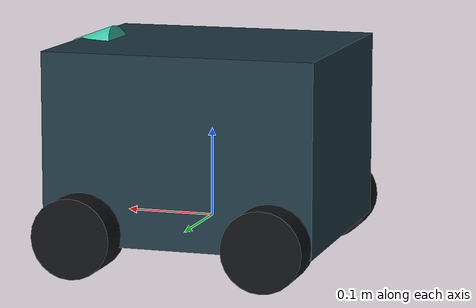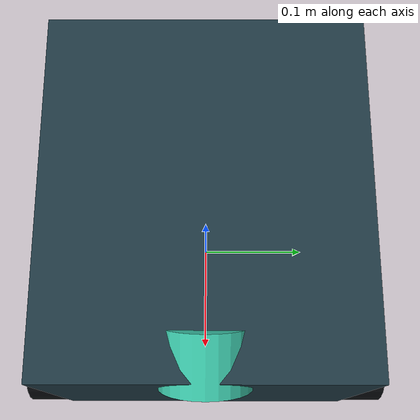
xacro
<?xml version="1.0"?>
<robot xmlns:xacro="http://www.ros.org/wiki/xacro" name="mrbobus">
  <xacro:include filename="$(find robot_base)/description/robot.urdf"/>
  <!-- Test standard controllers with the existing geometry, without any CAN transport. -->
  <ros2_control name="MrbobusMock" type="system">
    <hardware>
      <plugin>mock_components/GenericSystem</plugin>
      <param name="calculate_dynamics">true</param>
    </hardware>
    <xacro:macro name="wheel" params="name">
      <joint name="${name}_wheel_joint">
        <command_interface name="velocity"/>
        <state_interface name="position"><param name="initial_value">0.0</param></state_interface>
        <state_interface name="velocity"><param name="initial_value">0.0</param></state_interface>
      </joint>
    </xacro:macro>
    <xacro:wheel name="rear_right"/><xacro:wheel name="rear_left"/>
    <xacro:wheel name="front_left"/><xacro:wheel name="front_right"/>
  </ros2_control>
</robot>

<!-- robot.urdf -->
<robot name="box_tank">
  <material name="body"><color rgba="0.12 0.22 0.26 1"/></material>
  <material name="rubber"><color rgba="0.06 0.07 0.08 1"/></material>
  <material name="sensor"><color rgba="0.24 0.8 0.68 1"/></material>
  <link name="base_link">
    <!-- Bounding envelope of current Fusion base component (not a detailed collision mesh). -->
    <visual><origin xyz="0 0 0.092545"/><geometry><box size="0.30702 0.27004 0.21303"/></geometry><material name="body"/></visual>
  </link>
  <link name="base_footprint"/>
  <joint name="footprint_joint" type="fixed"><parent link="base_link"/><child link="base_footprint"/><origin xyz="0 0 -0.045"/></joint>
  <link name="rear_right_wheel"><visual><origin rpy="1.57079632679 0 0"/><geometry><cylinder radius="0.045" length="0.055"/></geometry><material name="rubber"/></visual></link>
  <link name="rear_left_wheel"><visual><origin rpy="1.57079632679 0 0"/><geometry><cylinder radius="0.045" length="0.055"/></geometry><material name="rubber"/></visual></link>
  <link name="front_left_wheel"><visual><origin rpy="1.57079632679 0 0"/><geometry><cylinder radius="0.045" length="0.055"/></geometry><material name="rubber"/></visual></link>
  <link name="front_right_wheel"><visual><origin rpy="1.57079632679 0 0"/><geometry><cylinder radius="0.045" length="0.055"/></geometry><material name="rubber"/></visual></link>
  <joint name="rear_right_wheel_joint" type="continuous"><parent link="base_link"/><child link="rear_right_wheel"/><origin xyz="-0.107781275613 -0.14587 0"/><axis xyz="0 1 0"/></joint>
  <joint name="rear_left_wheel_joint" type="continuous"><parent link="base_link"/><child link="rear_left_wheel"/><origin xyz="-0.107781275613 0.14587 0"/><axis xyz="0 1 0"/></joint>
  <joint name="front_left_wheel_joint" type="continuous"><parent link="base_link"/><child link="front_left_wheel"/><origin xyz="0.107781275613 0.14587 0"/><axis xyz="0 1 0"/></joint>
  <joint name="front_right_wheel_joint" type="continuous"><parent link="base_link"/><child link="front_right_wheel"/><origin xyz="0.107781275613 -0.14587 0"/><axis xyz="0 1 0"/></joint>
  <link name="unilidar_lidar"><visual><origin xyz="0 0 0.025"/><geometry><cylinder radius="0.0375" length="0.05"/></geometry><material name="sensor"/></visual></link>
  <joint name="lidar_mount" type="fixed"><parent link="base_link"/><child link="unilidar_lidar"/><origin xyz="0.105848277258 0 0.17804" rpy="1.91986217719 0 1.57079632679"/></joint>
  <!-- Existing unitree-l2.service owns unilidar_lidar -> unilidar_imu.
       Do not duplicate that static transform here. -->
</robot>
